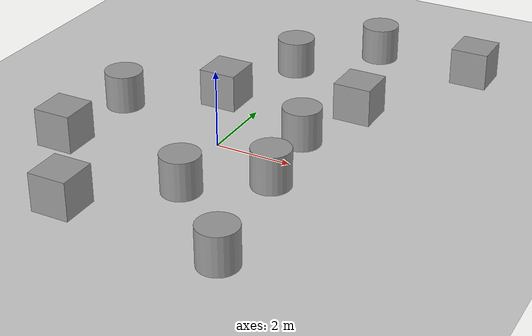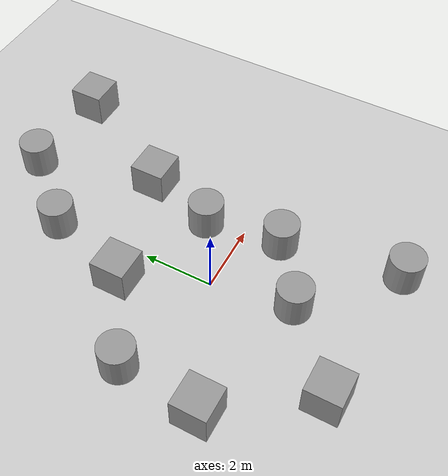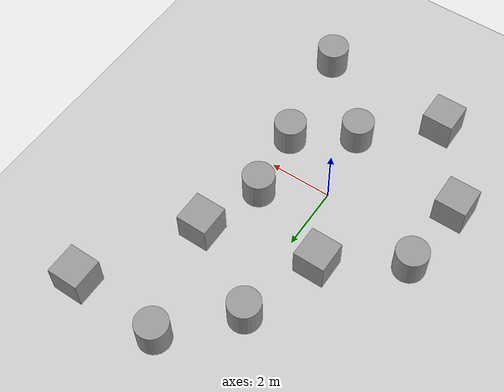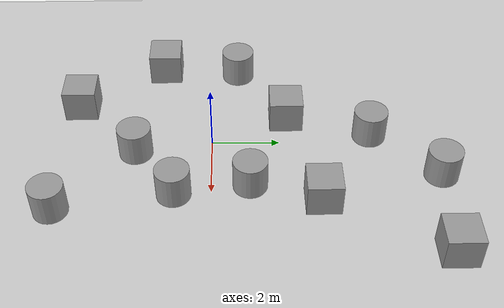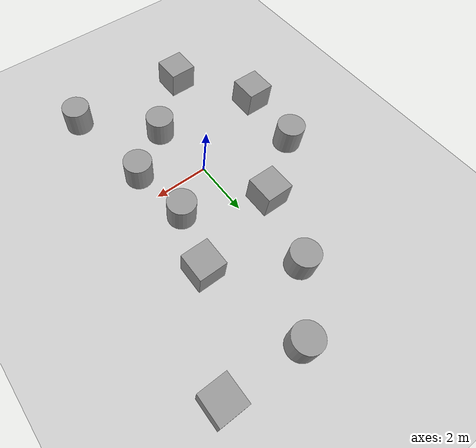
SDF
<sdf version="1.7">
 <world name="default">
  <light name="sun" type="directional">
   <pose>0 0 10 0 -0 0</pose>
   <diffuse>0.8 0.8 0.8 1</diffuse>
   <specular>0.2 0.2 0.2 1</specular>
   <attenuation>
    <range>1000</range>
    <constant>0.9</constant>
    <linear>0.01</linear>
    <quadratic>0.001</quadratic>
   </attenuation>
   <direction>-0.5 0.1 -0.9</direction>
   <spot><inner_angle>0</inner_angle><outer_angle>0</outer_angle><falloff>0</falloff></spot>
  </light>
  <model name="ground_plane">
   <static>1</static>
   <link name="link">
    <collision name="collision">
     <geometry><plane><normal>0 0 1</normal><size>100 100</size></plane></geometry>
     <surface>
      <contact><collide_bitmask>65535</collide_bitmask></contact>
      <friction><ode><mu>100</mu><mu2>50</mu2></ode></friction>
     </surface>
    </collision>
    <visual name="visual">
     <cast_shadows>0</cast_shadows>
     <geometry><plane><normal>0 0 1</normal><size>100 100</size></plane></geometry>
     <material>
      <script><uri>file://media/materials/scripts/gazebo.material</uri><name>Gazebo/Grey</name></script>
     </material>
    </visual>
   </link>
  </model>
  <gravity>0 0 -9.8</gravity>
  <magnetic_field>6e-06 2.3e-05 -4.2e-05</magnetic_field>
  <atmosphere type="adiabatic"/>
  <physics type="ode">
   <max_step_size>0.001</max_step_size>
   <real_time_factor>1</real_time_factor>
   <real_time_update_rate>1000</real_time_update_rate>
  </physics>
  <scene><ambient>0.4 0.4 0.4 1</ambient><background>0.7 0.7 0.7 1</background><shadows>1</shadows></scene>
  <spherical_coordinates>
   <surface_model>EARTH_WGS84</surface_model>
   <latitude_deg>0</latitude_deg>
   <longitude_deg>0</longitude_deg>
   <elevation>0</elevation>
   <heading_deg>0</heading_deg>
  </spherical_coordinates>
  <model name="unit_box">
   <pose>-1.02402 2.24135 0.499995 0 -1e-05 0</pose>
   <link name="link">
    <inertial>
     <mass>1</mass>
     <inertia>
      <ixx>0.166667</ixx>
      <ixy>0</ixy>
      <ixz>0</ixz>
      <iyy>0.166667</iyy>
      <iyz>0</iyz>
      <izz>0.166667</izz>
     </inertia>
    </inertial>
    <collision name="collision"><geometry><box><size>1 1 1</size></box></geometry></collision>
    <visual name="visual">
     <geometry><box><size>1 1 1</size></box></geometry>
     <material>
      <script><name>Gazebo/Grey</name><uri>file://media/materials/scripts/gazebo.material</uri></script>
     </material>
    </visual>
   </link>
  </model>
  <model name="unit_cylinder">
   <pose>1.77389 1.10792 0.499998 3e-06 -3e-06 0</pose>
   <link name="link">
    <inertial>
     <mass>1</mass>
     <inertia><ixx>0.145833</ixx><ixy>0</ixy><ixz>0</ixz><iyy>0.145833</iyy><iyz>0</iyz><izz>0.125</izz></inertia>
    </inertial>
    <collision name="collision">
     <geometry><cylinder><radius>0.5</radius><length>1</length></cylinder></geometry>
    </collision>
    <visual name="visual">
     <geometry><cylinder><radius>0.5</radius><length>1</length></cylinder></geometry>
     <material>
      <script><name>Gazebo/Grey</name><uri>file://media/materials/scripts/gazebo.material</uri></script>
     </material>
    </visual>
   </link>
  </model>
  <model name="unit_box_0">
   <pose>-3.44658 -1.54836 0.499995 0 -1e-05 0</pose>
   <link name="link">
    <inertial>
     <mass>1</mass>
     <inertia>
      <ixx>0.166667</ixx>
      <ixy>0</ixy>
      <ixz>0</ixz>
      <iyy>0.166667</iyy>
      <iyz>0</iyz>
      <izz>0.166667</izz>
     </inertia>
    </inertial>
    <collision name="collision"><geometry><box><size>1 1 1</size></box></geometry></collision>
    <visual name="visual">
     <geometry><box><size>1 1 1</size></box></geometry>
     <material>
      <script><name>Gazebo/Grey</name><uri>file://media/materials/scripts/gazebo.material</uri></script>
     </material>
    </visual>
   </link>
  </model>
  <model name="unit_cylinder_0">
   <pose>-3.26302 0.79891 0.499998 3e-06 -3e-06 0</pose>
   <link name="link">
    <inertial>
     <mass>1</mass>
     <inertia><ixx>0.145833</ixx><ixy>0</ixy><ixz>0</ixz><iyy>0.145833</iyy><iyz>0</iyz><izz>0.125</izz></inertia>
    </inertial>
    <collision name="collision">
     <geometry><cylinder><radius>0.5</radius><length>1</length></cylinder></geometry>
    </collision>
    <visual name="visual">
     <geometry><cylinder><radius>0.5</radius><length>1</length></cylinder></geometry>
     <material>
      <script><name>Gazebo/Grey</name><uri>file://media/materials/scripts/gazebo.material</uri></script>
     </material>
    </visual>
   </link>
  </model>
  <model name="unit_cylinder_1">
   <pose>0.360073 -2.2585 0.499998 3e-06 -4e-06 0</pose>
   <link name="link">
    <inertial>
     <mass>1</mass>
     <inertia><ixx>0.145833</ixx><ixy>0</ixy><ixz>0</ixz><iyy>0.145833</iyy><iyz>0</iyz><izz>0.125</izz></inertia>
    </inertial>
    <collision name="collision">
     <geometry><cylinder><radius>0.5</radius><length>1</length></cylinder></geometry>
    </collision>
    <visual name="visual">
     <geometry><cylinder><radius>0.5</radius><length>1</length></cylinder></geometry>
     <material>
      <script><name>Gazebo/Grey</name><uri>file://media/materials/scripts/gazebo.material</uri></script>
     </material>
    </visual>
   </link>
  </model>
  <model name="unit_box_1">
   <pose>-1.66175 -4.08115 0.499995 1e-05 -0 0</pose>
   <link name="link">
    <inertial>
     <mass>1</mass>
     <inertia>
      <ixx>0.166667</ixx>
      <ixy>0</ixy>
      <ixz>0</ixz>
      <iyy>0.166667</iyy>
      <iyz>0</iyz>
      <izz>0.166667</izz>
     </inertia>
    </inertial>
    <collision name="collision"><geometry><box><size>1 1 1</size></box></geometry></collision>
    <visual name="visual">
     <geometry><box><size>1 1 1</size></box></geometry>
     <material>
      <script><name>Gazebo/Grey</name><uri>file://media/materials/scripts/gazebo.material</uri></script>
     </material>
    </visual>
   </link>
  </model>
  <model name="unit_cylinder_2">
   <pose>2.07533 -1.06032 0.499992 -3e-06 4e-06 0</pose>
   <link name="link">
    <inertial>
     <mass>1</mass>
     <inertia><ixx>0.145833</ixx><ixy>0</ixy><ixz>0</ixz><iyy>0.145833</iyy><iyz>0</iyz><izz>0.125</izz></inertia>
    </inertial>
    <collision name="collision">
     <geometry><cylinder><radius>0.5</radius><length>1</length></cylinder></geometry>
    </collision>
    <visual name="visual">
     <geometry><cylinder><radius>0.5</radius><length>1</length></cylinder></geometry>
     <material>
      <script><name>Gazebo/Grey</name><uri>file://media/materials/scripts/gazebo.material</uri></script>
     </material>
    </visual>
   </link>
  </model>
  <model name="unit_cylinder_3">
   <pose>-0.246669 4.74003 0.499992 -3e-06 4e-06 0</pose>
   <link name="link">
    <inertial>
     <mass>1</mass>
     <inertia><ixx>0.145833</ixx><ixy>0</ixy><ixz>0</ixz><iyy>0.145833</iyy><iyz>0</iyz><izz>0.125</izz></inertia>
    </inertial>
    <collision name="collision">
     <geometry><cylinder><radius>0.5</radius><length>1</length></cylinder></geometry>
    </collision>
    <visual name="visual">
     <geometry><cylinder><radius>0.5</radius><length>1</length></cylinder></geometry>
     <material>
      <script><name>Gazebo/Grey</name><uri>file://media/materials/scripts/gazebo.material</uri></script>
     </material>
    </visual>
   </link>
  </model>
  <model name="unit_box_2">
   <pose>2.39868 3.12885 0.499995 0 -1e-05 0</pose>
   <link name="link">
    <inertial>
     <mass>1</mass>
     <inertia>
      <ixx>0.166667</ixx>
      <ixy>0</ixy>
      <ixz>0</ixz>
      <iyy>0.166667</iyy>
      <iyz>0</iyz>
      <izz>0.166667</izz>
     </inertia>
    </inertial>
    <collision name="collision"><geometry><box><size>1 1 1</size></box></geometry></collision>
    <visual name="visual">
     <geometry><box><size>1 1 1</size></box></geometry>
     <material>
      <script><name>Gazebo/Grey</name><uri>file://media/materials/scripts/gazebo.material</uri></script>
     </material>
    </visual>
   </link>
  </model>
  <model name="unit_cylinder_4">
   <pose>1.45614 6.63198 0.499997 3e-06 3e-06 0</pose>
   <link name="link">
    <inertial>
     <mass>1</mass>
     <inertia><ixx>0.145833</ixx><ixy>0</ixy><ixz>0</ixz><iyy>0.145833</iyy><iyz>0</iyz><izz>0.125</izz></inertia>
    </inertial>
    <collision name="collision">
     <geometry><cylinder><radius>0.5</radius><length>1</length></cylinder></geometry>
    </collision>
    <visual name="visual">
     <geometry><cylinder><radius>0.5</radius><length>1</length></cylinder></geometry>
     <material>
      <script><name>Gazebo/Grey</name><uri>file://media/materials/scripts/gazebo.material</uri></script>
     </material>
    </visual>
   </link>
  </model>
  <model name="unit_box_3">
   <pose>4.29988 6.4982 0.499995 0 -1e-05 0</pose>
   <link name="link">
    <inertial>
     <mass>1</mass>
     <inertia>
      <ixx>0.166667</ixx>
      <ixy>0</ixy>
      <ixz>0</ixz>
      <iyy>0.166667</iyy>
      <iyz>0</iyz>
      <izz>0.166667</izz>
     </inertia>
    </inertial>
    <collision name="collision"><geometry><box><size>1 1 1</size></box></geometry></collision>
    <visual name="visual">
     <geometry><box><size>1 1 1</size></box></geometry>
     <material>
      <script><name>Gazebo/Grey</name><uri>file://media/materials/scripts/gazebo.material</uri></script>
     </material>
    </visual>
   </link>
  </model>
  <model name="unit_cylinder_5">
   <pose>2.62036 -4.43134 0.499997 3e-06 4e-06 -0</pose>
   <link name="link">
    <inertial>
     <mass>1</mass>
     <inertia><ixx>0.145833</ixx><ixy>0</ixy><ixz>0</ixz><iyy>0.145833</iyy><iyz>0</iyz><izz>0.125</izz></inertia>
    </inertial>
    <collision name="collision">
     <geometry><cylinder><radius>0.5</radius><length>1</length></cylinder></geometry>
    </collision>
    <visual name="visual">
     <geometry><cylinder><radius>0.5</radius><length>1</length></cylinder></geometry>
     <material>
      <script><name>Gazebo/Grey</name><uri>file://media/materials/scripts/gazebo.material</uri></script>
     </material>
    </visual>
   </link>
  </model>
 </world>
</sdf>
